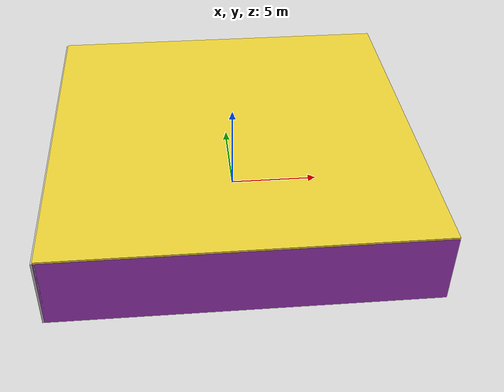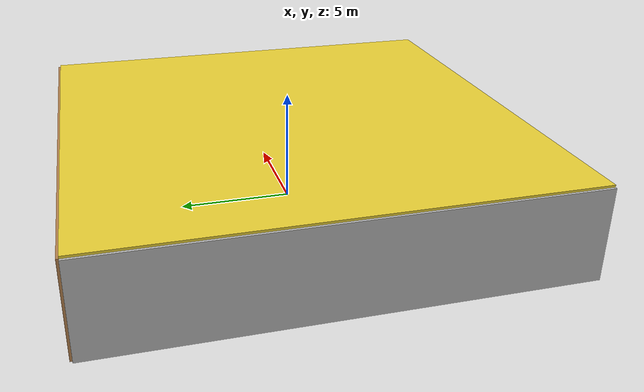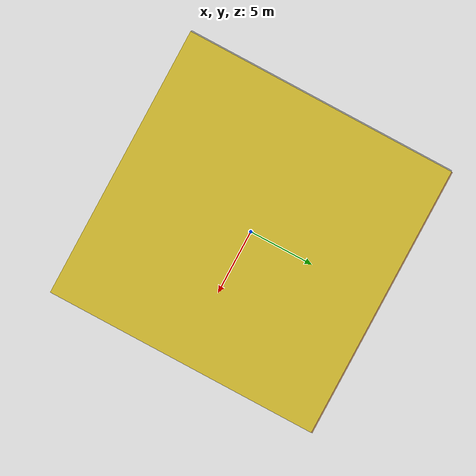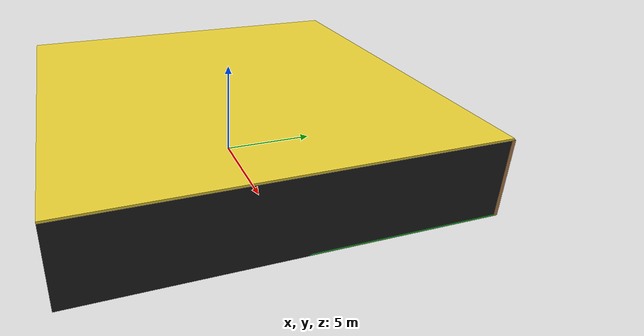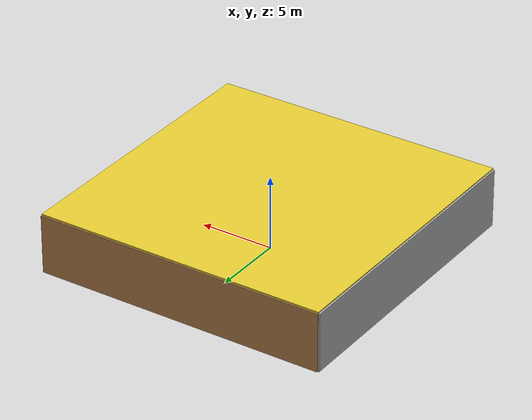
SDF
<sdf version="1.4">
 <world name="default">
  <physics type="ode">
   <max_step_size>0.001</max_step_size>
   <real_time_factor>1</real_time_factor>
   <real_time_update_rate>1000</real_time_update_rate>
   <gravity>0 0 -9.8</gravity>
  </physics>
  <scene><ambient>0.4 0.4 0.4 1</ambient><background>0.7 0.7 0.7 1</background><shadows>1</shadows></scene>
  <model name="Surrounding">
   <static>1</static>
   <link name="Ceiling">
    <collision name="Ceiling_Collision"><geometry><box><size>20 20 0.1</size></box></geometry></collision>
    <visual name="Ceiling_Visual">
     <geometry><box><size>20 20 0.1</size></box></geometry>
     <material>
      <script><uri>file://media/materials/scripts/gazebo.material</uri><name>Gazebo/ZincYellow</name></script>
     </material>
    </visual>
    <pose>0 0 4.05 0 0 0</pose>
   </link>
   <link name="Wall_South">
    <collision name="Wall_South_Collision">
     <geometry><box><size>20 0 4</size></box></geometry>
     <pose>0 0 2 0 -0 0</pose>
    </collision>
    <visual name="Wall_South_Visual">
     <pose>0 0 2 0 -0 0</pose>
     <geometry><box><size>20 0 4</size></box></geometry>
     <material>
      <script><uri>file://media/materials/scripts/gazebo.material</uri><name>Gazebo/PurpleGlow</name></script>
     </material>
    </visual>
    <velocity_decay><linear>0</linear><angular>0</angular></velocity_decay>
    <pose>0 -10 0 0 -0 0</pose>
   </link>
   <link name="Wall_East">
    <collision name="Wall_21_Collision">
     <geometry><box><size>20 0 4</size></box></geometry>
     <pose>0 0 2 0 -0 0</pose>
    </collision>
    <visual name="Wall_21_Visual">
     <pose>0 0 2 0 -0 0</pose>
     <geometry><box><size>20 0 4</size></box></geometry>
     <material>
      <script><uri>file://media/materials/scripts/gazebo.material</uri><name>Gazebo/FlatBlack</name></script>
     </material>
    </visual>
    <velocity_decay><linear>0</linear><angular>0</angular></velocity_decay>
    <pose>10 0 0 0 -0 1.5708</pose>
   </link>
   <link name="Wall_North">
    <collision name="Wall_22_Collision">
     <geometry><box><size>20 0.2 4</size></box></geometry>
     <pose>0 0 2 0 -0 0</pose>
    </collision>
    <visual name="Wall_22_Visual">
     <pose>0 0 2 0 -0 0</pose>
     <geometry><box><size>20 0.2 4</size></box></geometry>
     <material>
      <script><uri>file://media/materials/scripts/gazebo.material</uri><name>Gazebo/WoodFloor</name></script>
     </material>
    </visual>
    <velocity_decay><linear>0</linear><angular>0</angular></velocity_decay>
    <pose>0 10 0 0 -0 0</pose>
   </link>
   <link name="Wall_West">
    <collision name="Wall_23_Collision">
     <geometry><box><size>20 0.2 4</size></box></geometry>
     <pose>0 0 2 0 -0 0</pose>
    </collision>
    <visual name="Wall_23_Visual">
     <pose>0 0 2 0 -0 0</pose>
     <geometry><box><size>20 0.2 4</size></box></geometry>
     <material>
      <script><uri>file://media/materials/scripts/gazebo.material</uri><name>Gazebo/LightOff</name></script>
     </material>
    </visual>
    <velocity_decay><linear>0</linear><angular>0</angular></velocity_decay>
    <pose>-10 0 0 0 0 -1.5708</pose>
   </link>
   <link name="Ground_link">
    <collision name="collision">
     <pose>0 0 .05 0 -0 0</pose>
     <geometry><box><size>20 20 0.1</size></box></geometry>
    </collision>
    <visual name="visual">
     <pose>0 0 .05 0 -0 0</pose>
     <geometry><box><size>20 20 0.1</size></box></geometry>
     <material>
      <script><uri>file://media/materials/scripts/gazebo.material</uri><name>Gazebo/Green</name></script>
     </material>
    </visual>
   </link>
   <static>1</static>
  </model>
  <spherical_coordinates>
   <surface_model>EARTH_WGS84</surface_model>
   <latitude_deg>0</latitude_deg>
   <longitude_deg>0</longitude_deg>
   <elevation>0</elevation>
   <heading_deg>0</heading_deg>
  </spherical_coordinates>
  <light name="lightball_0" type="diffuse">
   <diffuse>0.8 0.8 0.8 1</diffuse>
   <specular>0.2 0.2 0.2 1</specular>
   <attenuation>
    <range>100</range>
    <constant>0.7</constant>
    <linear>0.01</linear>
    <quadratic>0.001</quadratic>
   </attenuation>
   <direction>-0.5 0.1 -0.9</direction>
   <pose>-0.0422083839941 -0.976605047072 3.83413913763 0 0 0</pose>
  </light>
  <light name="lightball_1" type="diffuse">
   <diffuse>0.8 0.8 0.8 1</diffuse>
   <specular>0.2 0.2 0.2 1</specular>
   <attenuation>
    <range>100</range>
    <constant>0.7</constant>
    <linear>0.01</linear>
    <quadratic>0.001</quadratic>
   </attenuation>
   <direction>-0.5 0.1 -0.9</direction>
   <pose>9.37920490325 9.30066423585 0.730872923136 0 0 0</pose>
  </light>
  <light name="lightball_2" type="diffuse">
   <diffuse>0.8 0.8 0.8 1</diffuse>
   <specular>0.2 0.2 0.2 1</specular>
   <attenuation>
    <range>100</range>
    <constant>0.7</constant>
    <linear>0.01</linear>
    <quadratic>0.001</quadratic>
   </attenuation>
   <direction>-0.5 0.1 -0.9</direction>
   <pose>-9.72497713043 -1.62678288305 1.02316129616 0 0 0</pose>
  </light>
  <include>
   <uri>model://construction_cone</uri>
   <pose>-8.09304851302 6.99008992181 0 0 0 2.6747939721</pose>
  </include>
  <include><uri>model://cabinet</uri><pose>-3.96314118599 4.57957533688 0 0 0 1.22211688035</pose></include>
  <include>
   <uri>model://construction_cone</uri>
   <pose>-1.56289004625 -4.24273911089 0 0 0 0.004312444709</pose>
  </include>
  <include><uri>model://cabinet</uri><pose>5.20422325991 -7.81965292713 0 0 0 1.54811979834</pose></include>
  <include>
   <uri>model://construction_cone</uri>
   <pose>7.02907477517 -8.10363651039 0 0 0 0.682952019754</pose>
  </include>
  <include>
   <uri>model://construction_cone</uri>
   <pose>7.25117472018 -3.98576028642 0 0 0 0.233376520999</pose>
  </include>
  <include><uri>model://table</uri><pose>7.77037473962 -0.714249980548 0 0 0 0.224944098156</pose></include>
 </world>
</sdf>

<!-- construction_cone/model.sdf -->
<sdf version="1.5">
  <model name="Construction Cone">
    <link name="link">
      <collision name="collision">
        <geometry>
          <mesh>
            <scale>10 10 10</scale>
            <uri>file://isr-testbed/construction_cone/meshes/construction_cone.dae</uri>
          </mesh>
        </geometry>
      </collision>
      <visual name="visual">
        <geometry>
          <mesh>
            <scale>10 10 10</scale>
            <uri>file://isr-testbed/construction_cone/meshes/construction_cone.dae</uri>
          </mesh>
        </geometry>
      </visual>
    </link>
  </model>
</sdf>

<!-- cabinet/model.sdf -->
<sdf version="1.5">
  <model name="cabinet">
    <static>true</static>
    <link name="cabinet_bottom_plate">
      <inertial>
        <pose>0 0 -1 0 0 0</pose>
        <inertia>
          <ixx>2.050000</ixx>
          <ixy>0</ixy>
          <ixz>0</ixz>
          <iyy>2.050000</iyy>
          <iyz>0</iyz>
          <izz>2.050000</izz>
        </inertia>
        <mass>25.000000</mass>
      </inertial>
      <collision name="cabinet_bottom_plate_geom">
        <pose>0 0 0.010000 0 0 0</pose>
        <geometry>
          <box>
            <size>0.450000 0.450000 0.020000</size>
          </box>
        </geometry>
      </collision>
      <visual name="cabinet_bottom_plate_geom_visual">
        <pose>0 0 0.010000 0 0 0</pose>
        <geometry>
          <box>
            <size>0.450000 0.450000 0.020000</size>
          </box>
        </geometry>
        <material>
          <script>
            <uri>model://media/materials/scripts/gazebo.material</uri>
            <name>Gazebo/Wood</name>
          </script>
        </material>
      </visual>
      <collision name="cabinet_bottom_plate_geom_cabinet_back_plate">
        <pose>0.235000 0 0.510000 0 0 0</pose>
        <geometry>
          <box>
            <size>0.020000 0.450000 1.020000</size>
          </box>
        </geometry>
      </collision>
      <visual name="cabinet_bottom_plate_geom_cabinet_back_plate_visual">
        <pose>0.235000 0 0.510000 0 0 0</pose>
        <geometry>
          <box>
            <size>0.020000 0.450000 1.020000</size>
          </box>
        </geometry>
        <material>
          <script>
            <uri>model://media/materials/scripts/gazebo.material</uri>
            <name>Gazebo/Wood</name>
          </script>
        </material>
      </visual>
      <collision name="cabinet_bottom_plate_geom_cabinet_left_plate">
        <pose>0 0.235000 0.510000 0 0 0</pose>
        <geometry>
          <box>
            <size>0.450000 0.020000 1.020000</size>
          </box>
        </geometry>
      </collision>
      <visual name="cabinet_bottom_plate_geom_cabinet_left_plate_visual">
        <pose>0 0.235000 0.510000 0 0 0</pose>
        <geometry>
          <box>
            <size>0.450000 0.020000 1.020000</size>
          </box>
        </geometry>
        <material>
          <script>
            <uri>model://media/materials/scripts/gazebo.material</uri>
            <name>Gazebo/Wood</name>
          </script>
        </material>
      </visual>
      <collision name="cabinet_bottom_plate_geom_cabinet_middle_plate">
        <pose>0 0 0.510000 0 0 0</pose>
        <geometry>
          <box>
            <size>0.450000 0.450000 0.020000</size>
          </box>
        </geometry>
      </collision>
      <visual name="cabinet_bottom_plate_geom_cabinet_middle_plate_visual">
        <pose>0 0 0.510000 0 0 0</pose>
        <geometry>
          <box>
            <size>0.450000 0.450000 0.020000</size>
          </box>
        </geometry>
        <material>
          <script>
            <uri>model://media/materials/scripts/gazebo.material</uri>
            <name>Gazebo/Wood</name>
          </script>
        </material>
      </visual>
      <collision name="cabinet_bottom_plate_geom_cabinet_right_plate">
        <pose>0 -0.235000 0.510000 0 0 0</pose>
        <geometry>
          <box>
            <size>0.450000 0.020000 1.020000</size>
          </box>
        </geometry>
      </collision>
      <visual name="cabinet_bottom_plate_geom_cabinet_right_plate_visual">
        <pose>0 -0.235000 0.510000 0 0 0</pose>
        <geometry>
          <box>
            <size>0.450000 0.020000 1.020000</size>
          </box>
        </geometry>
        <material>
          <script>
            <uri>model://media/materials/scripts/gazebo.material</uri>
            <name>Gazebo/Wood</name>
          </script>
        </material>
      </visual>
      <collision name="cabinet_bottom_plate_geom_cabinet_top_plate">
        <pose>0 0 1.010000 0 0 0</pose>
        <geometry>
          <box>
            <size>0.450000 0.450000 0.020000</size>
          </box>
        </geometry>
      </collision>
      <visual name="cabinet_bottom_plate_geom_cabinet_top_plate_visual">
        <pose>0 0 1.010000 0 0 0</pose>
        <geometry>
          <box>
            <size>0.450000 0.450000 0.020000</size>
          </box>
        </geometry>
        <material>
          <script>
            <uri>model://media/materials/scripts/gazebo.material</uri>
            <name>Gazebo/Wood</name>
          </script>
        </material>
      </visual>
    </link>
  </model>
</sdf>

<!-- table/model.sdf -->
<sdf version="1.5">
  <model name="table">
    <static>true</static>
    <link name="link">
      <collision name="surface">
        <pose>0 0 1.0 0 0 0</pose>
        <geometry>
          <box>
            <size>1.5 0.8 0.03</size>
          </box>
        </geometry>
        <surface>
          <friction>
            <ode>
              <mu>0.6</mu>
              <mu2>0.6</mu2>
            </ode>
          </friction>
        </surface>
      </collision>
      <visual name="visual1">
        <pose>0 0 1.0 0 0 0</pose>
        <geometry>
          <box>
            <size>1.5 0.8 0.03</size>
          </box>
        </geometry>
        <material>
          <script>
            <uri>model://media/materials/scripts/gazebo.material</uri>
            <name>Gazebo/Wood</name>
          </script>
        </material>
      </visual>
      <collision name="front_left_leg">
        <pose>0.68 0.38 0.5 0 0 0</pose>
        <geometry>
          <cylinder>
            <radius>0.02</radius>
            <length>1.0</length>
          </cylinder>
        </geometry>
      </collision>
      <visual name="front_left_leg">
        <pose>0.68 0.38 0.5 0 0 0</pose>
        <geometry>
          <cylinder>
            <radius>0.02</radius>
            <length>1.0</length>
          </cylinder>
        </geometry>
        <material>
          <script>
            <uri>model://media/materials/scripts/gazebo.material</uri>
            <name>Gazebo/Grey</name>
          </script>
        </material>
      </visual>
      <collision name="front_right_leg">
        <pose>0.68 -0.38 0.5 0 0 0</pose>
        <geometry>
          <cylinder>
            <radius>0.02</radius>
            <length>1.0</length>
          </cylinder>
        </geometry>
      </collision>
      <visual name="front_right_leg">
        <pose>0.68 -0.38 0.5 0 0 0</pose>
        <geometry>
          <cylinder>
            <radius>0.02</radius>
            <length>1.0</length>
          </cylinder>
        </geometry>
        <material>
          <script>
            <uri>model://media/materials/scripts/gazebo.material</uri>
            <name>Gazebo/Grey</name>
          </script>
        </material>
      </visual>
      <collision name="back_right_leg">
        <pose>-0.68 -0.38 0.5 0 0 0</pose>
        <geometry>
          <cylinder>
            <radius>0.02</radius>
            <length>1.0</length>
          </cylinder>
        </geometry>
      </collision>
      <visual name="back_right_leg">
        <pose>-0.68 -0.38 0.5 0 0 0</pose>
        <geometry>
          <cylinder>
            <radius>0.02</radius>
            <length>1.0</length>
          </cylinder>
        </geometry>
        <material>
          <script>
            <uri>model://media/materials/scripts/gazebo.material</uri>
            <name>Gazebo/Grey</name>
          </script>
        </material>
      </visual>
      <collision name="back_left_leg">
        <pose>-0.68 0.38 0.5 0 0 0</pose>
        <geometry>
          <cylinder>
            <radius>0.02</radius>
            <length>1.0</length>
          </cylinder>
        </geometry>
      </collision>
      <visual name="back_left_leg">
        <pose>-0.68 0.38 0.5 0 0 0</pose>
        <geometry>
          <cylinder>
            <radius>0.02</radius>
            <length>1.0</length>
          </cylinder>
        </geometry>
        <material>
          <script>
            <uri>model://media/materials/scripts/gazebo.material</uri>
            <name>Gazebo/Grey</name>
          </script>
        </material>
      </visual>
    </link>
  </model>
</sdf>
